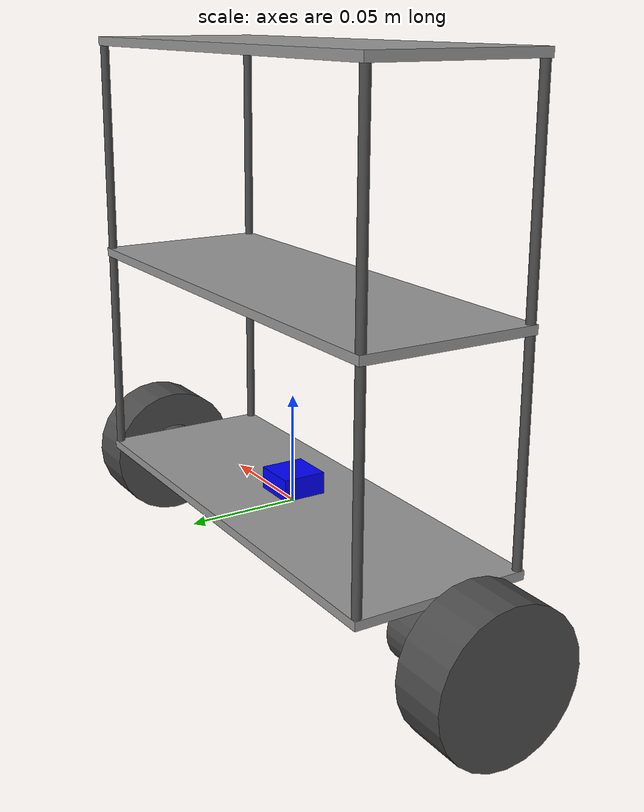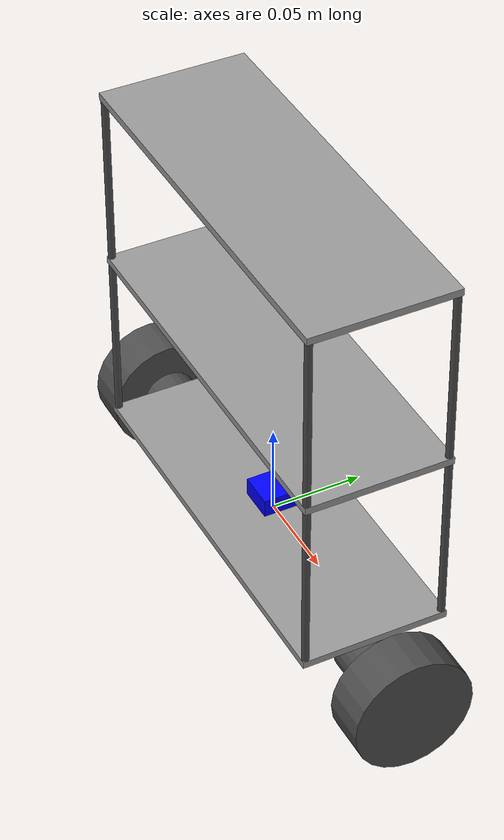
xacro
<?xml version="1.0"?>
<robot name="balance_bot" xmlns:xacro="http://www.ros.org/wiki/xacro">

  <!-- === Dimensions === -->
  <xacro:property name="plate_length" value="0.22"/>
  <xacro:property name="plate_width" value="0.08"/>
  <xacro:property name="plate_thickness" value="0.004"/>
  <xacro:property name="wheel_radius" value="0.0325"/>
  <xacro:property name="wheel_thickness" value="0.025"/>
  <xacro:property name="motor_length" value="0.03"/>
  <xacro:property name="motor_radius" value="0.015"/>
  <xacro:property name="stick_radius" value="0.002"/>
  <xacro:property name="stick_length" value="0.2"/>

  <!-- === Base Plate === -->
  <link name="base_plate">
    <visual>
      <geometry>
        <box size="${plate_length} ${plate_width} ${plate_thickness}"/>
      </geometry>
      <origin xyz="0 0 0"/>
      <material name="Gray"/>
    </visual>
    <collision>
      <geometry>
        <box size="${plate_length} ${plate_width} ${plate_thickness}"/>
      </geometry>
    </collision>
    <inertial>
      <mass value="0.26"/> <!-- Adjusted from 0.3 because battery moved -->
      <inertia ixx="0.00016" iyy="0.00121" izz="0.00171" ixy="0" ixz="0" iyz="0"/>
    </inertial>
  </link>

  <!-- === Motors === -->
  <link name="left_motor">
    <visual>
      <geometry>
        <cylinder radius="${motor_radius}" length="${motor_length}"/>
      </geometry>
      <origin rpy="0 1.5708 0"/>
      <material name="DarkGray"/>
    </visual>
    <collision>
      <geometry>
        <cylinder radius="${motor_radius}" length="${motor_length}"/>
      </geometry>
      <origin rpy="0 1.5708 0"/>
    </collision>
    <inertial>
      <mass value="0.05"/>
      <inertia ixx="1e-5" iyy="1e-5" izz="1e-5" ixy="0" ixz="0" iyz="0"/>
    </inertial>
  </link>

  <joint name="left_motor_joint" type="fixed">
    <parent link="base_plate"/>
    <child link="left_motor"/>
    <origin xyz="${plate_length/2} 0 ${-plate_thickness/2 - motor_radius}"/>
  </joint>

  <link name="right_motor">
    <visual>
      <geometry>
        <cylinder radius="${motor_radius}" length="${motor_length}"/>
      </geometry>
      <origin rpy="0 1.5708 0"/>
      <material name="DarkGray"/>
    </visual>
    <collision>
      <geometry>
        <cylinder radius="${motor_radius}" length="${motor_length}"/>
      </geometry>
      <origin rpy="0 1.5708 0"/>
    </collision>
    <inertial>
      <mass value="0.05"/>
      <inertia ixx="1e-5" iyy="1e-5" izz="1e-5" ixy="0" ixz="0" iyz="0"/>
    </inertial>
  </link>

  <joint name="right_motor_joint" type="fixed">
    <parent link="base_plate"/>
    <child link="right_motor"/>
    <origin xyz="${-plate_length/2} 0 ${-plate_thickness/2 - motor_radius}"/>
  </joint>

  <!-- LEFT WHEEL LINK -->
  <link name="left_wheel">
    <visual>
      <geometry>
        <cylinder radius="${wheel_radius}" length="${wheel_thickness}"/>
      </geometry>
      <origin xyz="0 0 0" rpy="0 1.5708 0"/>
      <material name="DarkGray"/>
    </visual>
    <collision>
      <geometry>
        <cylinder radius="${wheel_radius}" length="${wheel_thickness}"/>
      </geometry>
      <origin xyz="0 0 0" rpy="0 1.5708 0"/>
    </collision>
    <inertial>
      <mass value="0.05"/>
      <inertia ixx="1.58e-5" iyy="1.58e-5" izz="2.64e-5" ixy="0" ixz="0" iyz="0"/>
    </inertial>
  </link>

  <!-- LEFT WHEEL JOINT directly on motor -->
  <joint name="left_wheel_joint" type="continuous">
    <parent link="left_motor"/>
    <child link="left_wheel"/>
    <origin xyz="${motor_length/2 + wheel_thickness/2 } 0 0" rpy="0 0 0"/>
    <axis xyz="1 0 0"/>
    <limit effort="100.0" velocity="100.0"/>
    <dynamics damping="0.01" friction="0.05"/>
  </joint>

  <gazebo reference="left_wheel">
    <mu1>2.0</mu1>
    <mu2>2.0</mu2>
    <kp>50000.0</kp>
    <kd>10.0</kd>
  </gazebo>

  <!-- RIGHT WHEEL LINK -->
  <link name="right_wheel">
    <visual>
      <geometry>
        <cylinder radius="${wheel_radius}" length="${wheel_thickness}"/>
      </geometry>
      <origin xyz="0 0 0" rpy="0 1.5708 0"/>
      <material name="DarkGray"/>
    </visual>
    <collision>
      <geometry>
        <cylinder radius="${wheel_radius}" length="${wheel_thickness}"/>
      </geometry>
      <origin xyz="0 0 0" rpy="0 1.5708 0"/>
    </collision>
    <inertial>
      <mass value="0.05"/>
      <inertia ixx="1.58e-5" iyy="1.58e-5" izz="2.64e-5" ixy="0" ixz="0" iyz="0"/>
    </inertial>
  </link>

  <!-- RIGHT WHEEL JOINT directly on motor -->
  <joint name="right_wheel_joint" type="continuous">
    <parent link="right_motor"/>
    <child link="right_wheel"/>
    <origin xyz="${-(motor_length/2 + wheel_thickness/2) } 0 0" rpy="0 0 0"/>
    <axis xyz="1 0 0"/>
    <limit effort="100.0" velocity="100.0"/>
    <dynamics damping="0.01" friction="0.05"/>
  </joint>

  <gazebo reference="right_wheel">
    <mu1>2.0</mu1>
    <mu2>2.0</mu2>
    <kp>50000.0</kp>
    <kd>10.0</kd>
  </gazebo>

  <!-- === Middle Plate === -->
  <link name="middle_plate">
    <visual>
      <geometry>
        <box size="${plate_length} ${plate_width} ${plate_thickness}"/>
      </geometry>
      <material name="Gray"/>
    </visual>
    <collision>
      <geometry>
        <box size="${plate_length} ${plate_width} ${plate_thickness}"/>
      </geometry>
    </collision>
    <inertial>
      <mass value="0.4"/> <!-- Battery mass moved here -->
      <inertia ixx="5.4e-5" iyy="0.00040" izz="0.00045" ixy="0" ixz="0" iyz="0"/>
    </inertial>
  </link>

  <joint name="middle_plate_joint" type="fixed">
    <parent link="base_plate"/>
    <child link="middle_plate"/>
    <origin xyz="0 0 0.1"/>
  </joint>

  <!-- === Top Plate === -->
  <link name="top_plate">
    <visual>
      <geometry>
        <box size="${plate_length} ${plate_width} ${plate_thickness}"/>
      </geometry>
      <material name="Gray"/>
    </visual>
    <collision>
      <geometry>
        <box size="${plate_length} ${plate_width} ${plate_thickness}"/>
      </geometry>
    </collision>
    <inertial>
      <mass value="0.02"/>
      <inertia ixx="1e-5" iyy="1e-5" izz="2e-5" ixy="0" ixz="0" iyz="0"/>
    </inertial>
  </link>

  <joint name="top_plate_joint" type="fixed">
    <parent link="base_plate"/>
    <child link="top_plate"/>
    <origin xyz="0 0 0.2"/>
  </joint>

  <!-- === 4 Support Sticks === -->
  <xacro:macro name="stick" params="name x y">
    <link name="${name}">
      <visual>
        <geometry>
          <cylinder radius="${stick_radius}" length="${stick_length}"/>
        </geometry>
        <material name="DarkGray"/>
      </visual>
      <collision>
        <geometry>
          <cylinder radius="${stick_radius}" length="${stick_length}"/>
        </geometry>
      </collision>
      <inertial>
        <mass value="0.02"/>
        <inertia ixx="5e-5" iyy="5e-5" izz="2e-6" ixy="0" ixz="0" iyz="0"/>
      </inertial>
    </link>
    <joint name="${name}_joint" type="fixed">
      <parent link="base_plate"/>
      <child link="${name}"/>
      <origin xyz="${x} ${y} ${stick_length/2}"/>
    </joint>
  </xacro:macro>

  <xacro:stick name="stick_fl" x="${plate_length/2 - stick_radius}" y="${plate_width/2 - stick_radius}"/>
  <xacro:stick name="stick_fr" x="${plate_length/2 - stick_radius}" y="${-plate_width/2 + stick_radius}"/>
  <xacro:stick name="stick_bl" x="${-plate_length/2 + stick_radius}" y="${plate_width/2 - stick_radius}"/>
  <xacro:stick name="stick_br" x="${-plate_length/2 + stick_radius}" y="${-plate_width/2 + stick_radius}"/>

  <!-- === IMU Link === -->
  <link name="imu_link">
    <inertial>
      <mass value="0.01"/>
      <inertia ixx="1e-6" ixy="0" ixz="0" iyy="1e-6" iyz="0" izz="1e-6"/>
    </inertial>
    <visual>
      <origin xyz="0 0 0" rpy="0 0 0"/>
      <geometry>
        <box size="0.02 0.02 0.01"/>
      </geometry>
      <material name="Blue">
        <color rgba="0 0 1 1"/>
      </material>
    </visual>
    <collision>
      <origin xyz="0 0 0" rpy="0 0 0"/>
      <geometry>
        <box size="0.02 0.02 0.01"/>
      </geometry>
    </collision>
  </link>

  <joint name="imu_joint" type="fixed">
    <parent link="base_plate"/>
    <child link="imu_link"/>
    <origin xyz="0 0 0.01" rpy="0 0 0"/>
  </joint>

  <!-- === Transmissions === -->
  <transmission name="left_wheel_transmission">
    <type>transmission_interface/SimpleTransmission</type>
    <joint name="left_wheel_joint">
      <hardwareInterface>hardware_interface/EffortJointInterface</hardwareInterface>
    </joint>
    <actuator name="left_wheel_motor">
      <hardwareInterface>hardware_interface/EffortJointInterface</hardwareInterface>
      <mechanicalReduction>1</mechanicalReduction>
    </actuator>
  </transmission>

  <transmission name="right_wheel_transmission">
    <type>transmission_interface/SimpleTransmission</type>
    <joint name="right_wheel_joint">
      <hardwareInterface>hardware_interface/EffortJointInterface</hardwareInterface>
    </joint>
    <actuator name="right_wheel_motor">
      <hardwareInterface>hardware_interface/EffortJointInterface</hardwareInterface>
      <mechanicalReduction>1</mechanicalReduction>
    </actuator>
  </transmission>

  <!-- === Plugins === -->
  <gazebo>
    <plugin name="gazebo_ros_control" filename="libgazebo_ros_control.so"/>
  </gazebo>

  <gazebo>
    <plugin name="odometry_plugin" filename="libgazebo_ros_p3d.so">
      <update_rate>100.0</update_rate>
      <bodyName>base_plate</bodyName>
      <topicName>odom</topicName>
      <gaussianNoise>0.0</gaussianNoise>
    </plugin>
  </gazebo>

  <gazebo reference="imu_link">
    <sensor type="imu" name="imu_sensor">
      <always_on>true</always_on>
      <update_rate>200.0</update_rate>
      <visualize>true</visualize>
      <plugin name="imu_plugin" filename="libgazebo_ros_imu_sensor.so">
        <robotNamespace>/balance_bot</robotNamespace>
        <topicName>imu_data</topicName>
        <frameName>imu_link</frameName>
        <updateRateHZ>200.0</updateRateHZ>
        <gaussianNoise>0.0001</gaussianNoise>
        <xyzOffset>0 0 0</xyzOffset>
        <rpyOffset>0 0 0</rpyOffset>
      </plugin>
    </sensor>
  </gazebo>

</robot>
